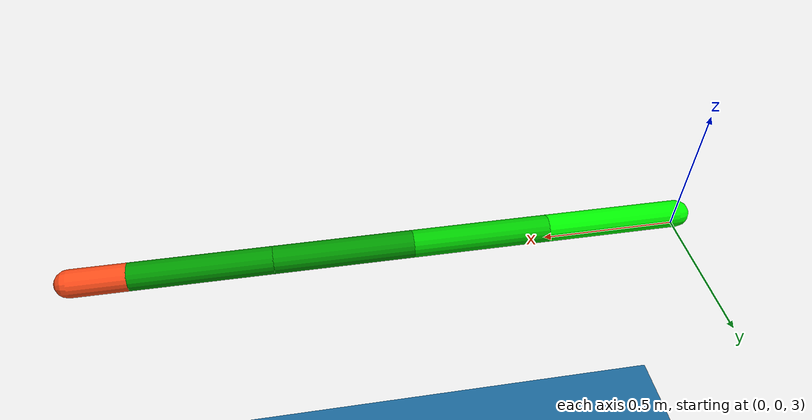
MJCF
<mujoco model="worm_swimmer">
    <option gravity="0 0 -0.1" timestep="0.01" viscosity="1.0" density="1000" integrator="implicitfast">
        <flag energy="enable"/>
    </option>

    <asset>
    <texture name="grid" type="2d" builtin="checker" width="512" height="512" rgb1=".1 .2 .3" rgb2=".2 .3 .4"/>
    <material name="grid" texture="grid" texrepeat="1 1" texuniform="true" reflectance=".2"/>
    </asset>

    <default>
        <joint damping="0.5"/>
        <geom friction="0.1 0.1 0.1"/>
    </default>

    <worldbody>
        <light name="main_light"
            mode="trackcom"
            pos="0 -4 8"
            dir="0 1 -1"
            diffuse="1 1 1"
            specular="0.3 0.3 0.3"/>

        <light name="fill_light"
            pos="4 4 6"
            dir="-1 -1 -1"
            diffuse="0.5 0.5 0.5"
            specular="0.1 0.1 0.1"/>
        <geom name="floor" type="plane" size="0 0 .05" material="grid" condim="3" rgba="0.1 0.4 0.6 1"/>

        <!-- Water visualiser (purely visual, no collisions) -->
        <!-- Water visualiser -->
        <geom name="water_surface"
            type="plane"
            size="20 20 0.01"
            pos="0 0 3.0"
            rgba="0 0.5 1 0.15"
            contype="0"
            conaffinity="0"/>

        <!-- Better side-follow camera -->
        <camera name="side_follow"
                mode="trackcom"
                pos="1 -3.0 7.0"
                xyaxes="1 0 0 0 0.707 0.707"/>

        <!-- Oblique camera: best for seeing swimming motion -->
        <camera name="oblique_follow"
                mode="trackcom"
                pos="-2.5 -4.0 5"
                xyaxes="0.85 -0.5 0 0.25 0.45 0.86"/>

        <!-- Top camera, but higher and useful for path tracking -->
        <camera name="top_follow"
                mode="trackcom"
                pos="0 0 8"
                xyaxes="1 0 0 0 1 0"/>

        <body name="segment1" pos="0 0 3.05">
            <freejoint name="root"/>
            <geom type="capsule"
                size="0.05"
                fromto="0 0 0 0.5 0 0"
                fluidshape="ellipsoid"
                fluidcoef="0.5 0.25 1.5 1.0 1.0"
                rgba="0 1 0 1"/>

            <body name="segment2" pos="0.5 0 0">
                <joint name="joint1" type="hinge" axis="0 1 0" pos="0 0 0"/>
                <geom type="capsule"
                    size="0.05"
                    fluidshape="ellipsoid"
                    fluidcoef="0.5 0.25 1.5 1.0 1.0"
                    fromto="0 0 0 0.5 0 0"
                    rgba="0 0.8 0 1"/>

                <body name="segment3" pos="0.5 0 0">
                    <joint name="joint2" type="hinge" axis="0 1 0" pos="0 0 0"/>
                    <geom type="capsule"
                        size="0.05"
                        fluidshape="ellipsoid"
                        fluidcoef="0.5 0.25 1.5 1.0 1.0"
                        fromto="0 0 0 0.5 0 0"
                        rgba="0 0.6 0 1"/>

                    <body name="segment4" pos="0.5 0 0">
                        <joint name="joint3" type="hinge" axis="0 1 0" pos="0 0 0"/>
                        <geom type="capsule"
                            size="0.05"
                            fluidshape="ellipsoid"
                            fluidcoef="0.5 0.25 1.5 1.0 1.0"
                            fromto="0 0 0 0.5 0 0"
                            rgba="0 0.6 0 1"/>

                        <body name="head" pos="0.5 0 0">
                            <joint name="joint4" type="hinge" axis="0 1 0" pos="0 0 0"/>
                            <geom type="capsule"
                                size="0.05"
                                fromto="0 0 0 0.2 0 0"
                                fluidshape="ellipsoid"
                                fluidcoef="0.5 0.25 1.5 1.0 1.0"
                                rgba="1 0.3 0.1 1"/>
                        </body>
                    </body>
                </body>
            </body>
        </body>
    </worldbody>

    <actuator>
        <motor name="muscle1" joint="joint1" gear="60"/>
        <motor name="muscle2" joint="joint2" gear="60"/>
        <motor name="muscle3" joint="joint3" gear="60"/>
        <motor name="muscle4" joint="joint4" gear="60"/>
    </actuator>
</mujoco>
